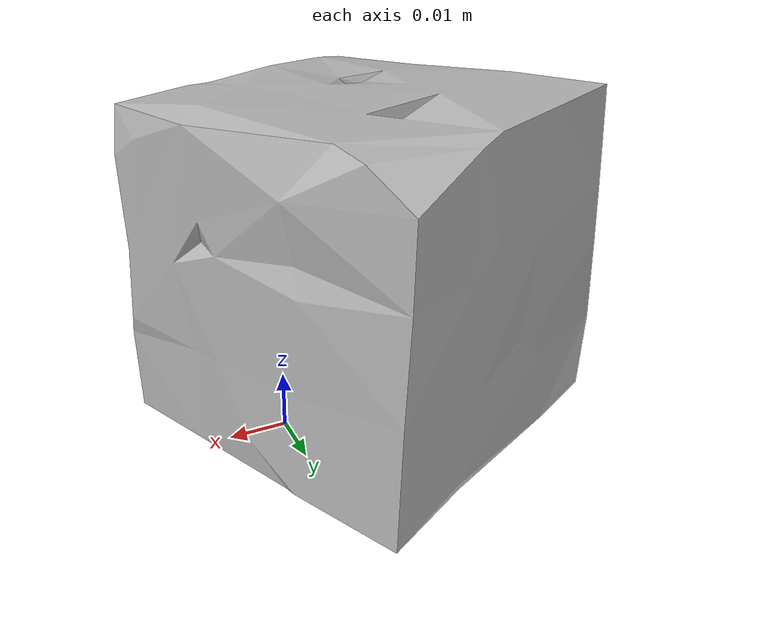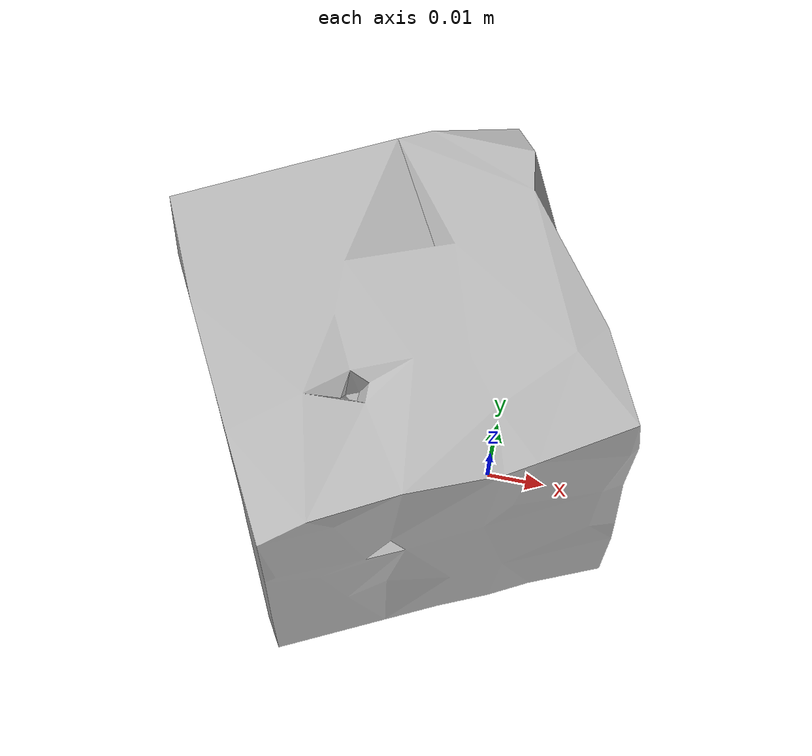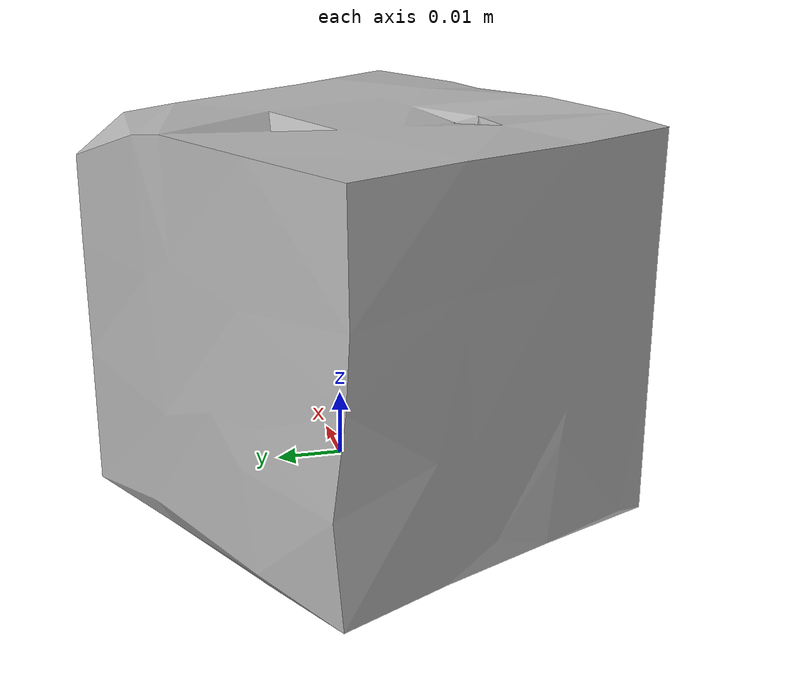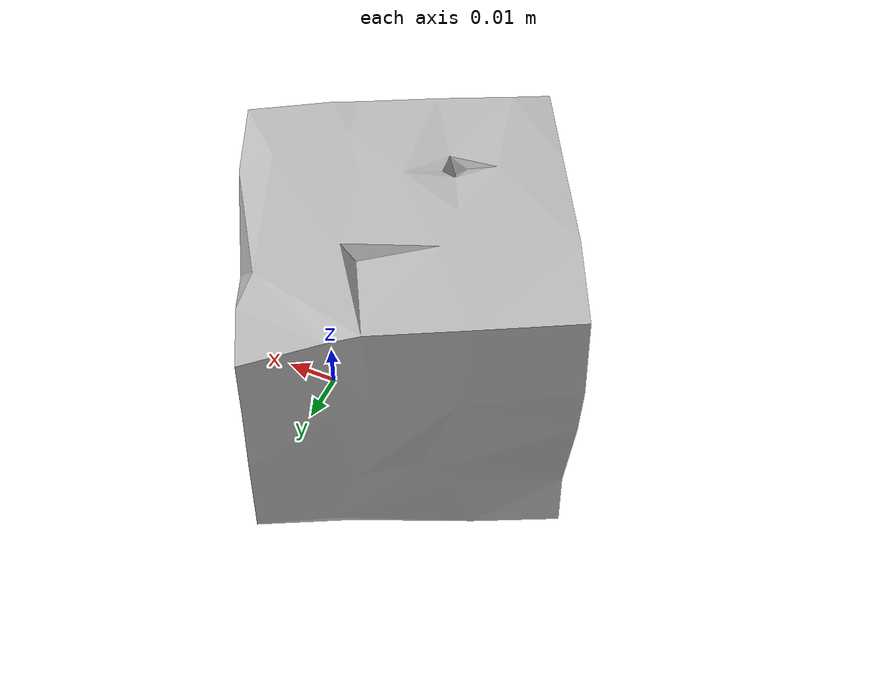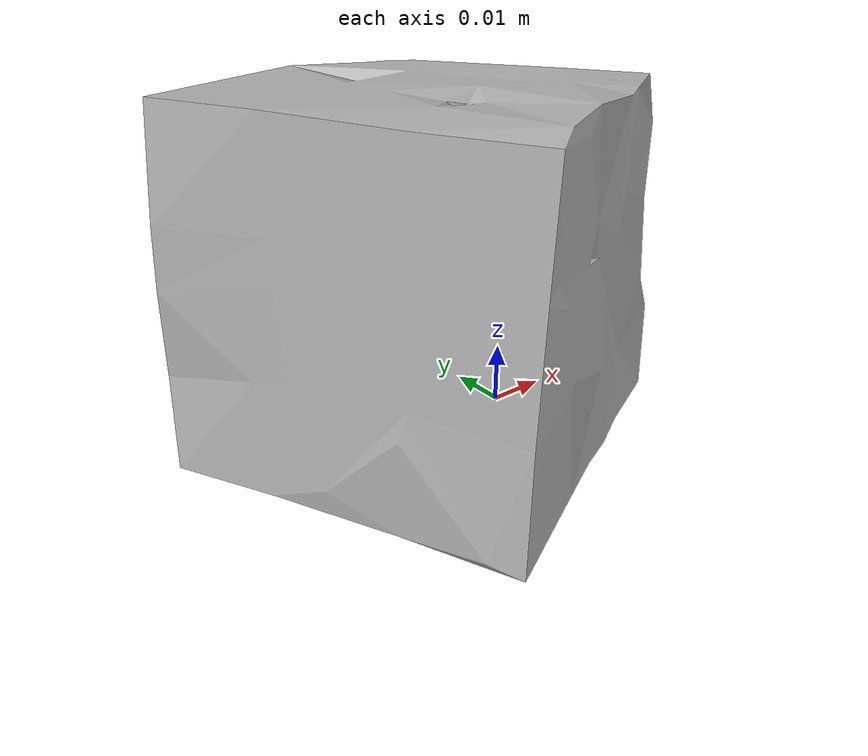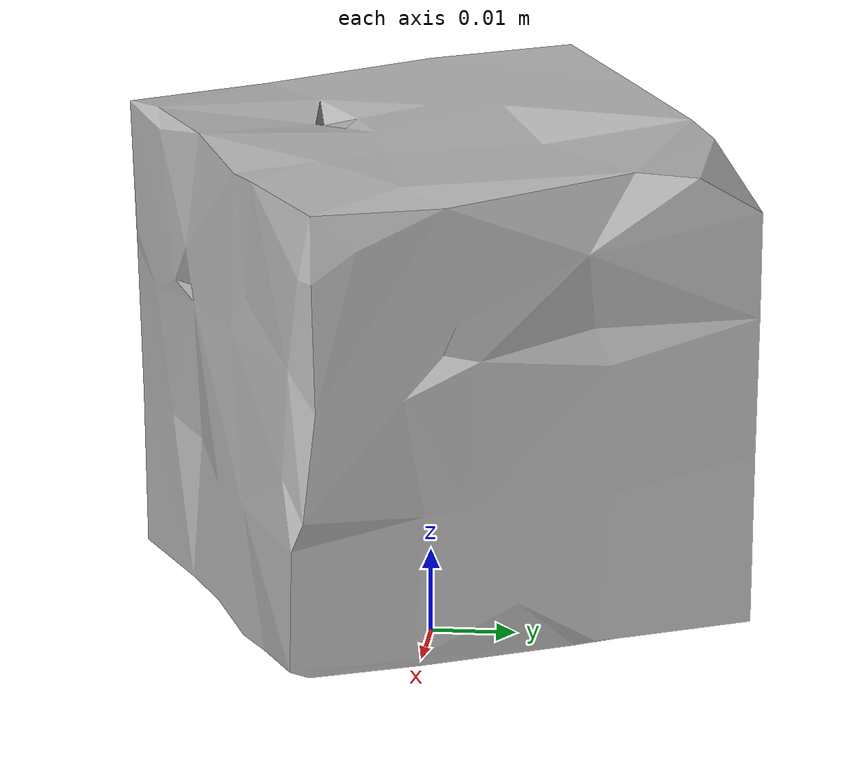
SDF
<?xml version='1.0'?>
<sdf version="1.4">
  <model name="077_rubiks_cube">
    <static>false</static>
    <link name="link">
      <inertial>
        <pose>-0.016200286918523366 -0.0004832020341410322 0.028596759727198218 -1.0001893893058484 1.435516971592849 -2.0246982663576336</pose>
        <mass>0.019014108317436253</mass>
        <inertia>
          <ixx>1.0422889658521423e-05</ixx>
          <ixy>-1.4296843555833945e-21</ixy>
          <ixz>-3.264859404858789e-22</ixz>
          <iyy>1.0414950083694817e-05</iyy>
          <iyz>1.0213076424428054e-21</iyz>
          <izz>1.0334013866618589e-05</izz>
        </inertia>
      </inertial>
      <collision name="collision">
        <geometry>
          <mesh>
            <!-- Use a downsampled mesh for collisions -->
            <uri>model:///077_rubiks_cube/077_rubiks_cube_250_collision.stl</uri>
	        </mesh>
        </geometry>
        <surface>
      </surface>
      </collision>
      <visual name="visual">
        <geometry>
          <mesh>
            <uri>model:///077_rubiks_cube/textured.obj</uri>
	        </mesh>
        </geometry>
        <material>
          <script>
            <uri>model:///077_rubiks_cube/077_rubiks_cube.material</uri>
            <name>077_rubiks_cube</name>
          </script>
        </material>
      </visual>
    </link>
  </model>
</sdf>
